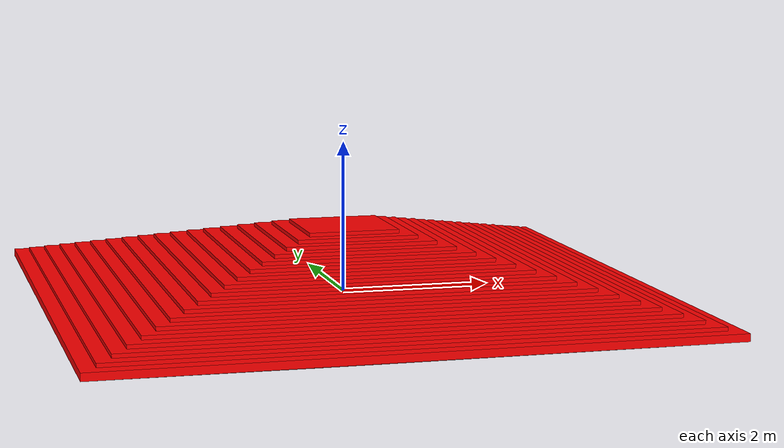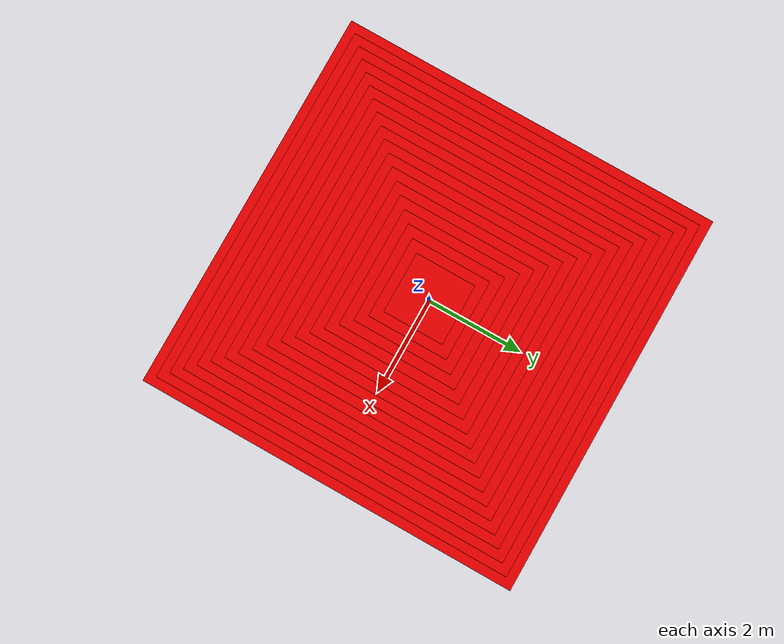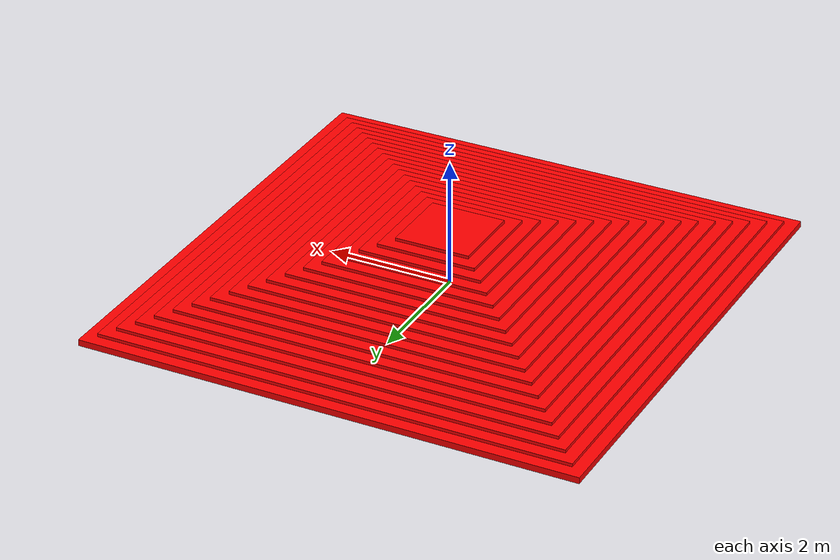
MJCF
<mujoco model="random_box_terrain">
    <compiler angle="degree" coordinate="local"/>
    <option timestep="0.01" gravity="0 0 -9.81" integrator="RK4"/>

    <asset>
        <texture type="2d" name="Plastic006_color"      file="../textures/Plastic006_2K-PNG/Plastic006_2K-PNG_Color.png"/>
        <texture type="2d" name="Plastic006_roughness"  file="../textures/Plastic006_2K-PNG/Plastic006_2K-PNG_Roughness.png"/>
        <texture type="2d" name="Plastic006_normal"     file="../textures/Plastic006_2K-PNG/Plastic006_2K-PNG_NormalDX.png"/>

        <material name="pbr_plastic_black" metallic ="0.05" roughness="1.0" rgba="1 0 0 1.0">
        <rgb        texture="Plastic006_color"/>
        <normal     texture="Plastic006_normal"/>
        <roughness  texture="Plastic006_roughness"/>
        </material>

        <texture type="2d" name="Plastic013A_color"      file="../textures/Plastic013A_2K-PNG/Plastic013A_2K-PNG_Color.png"/>
        <texture type="2d" name="Plastic013A_roughness"  file="../textures/Plastic013A_2K-PNG/Plastic013A_2K-PNG_Roughness.png"/>
        <texture type="2d" name="Plastic013A_normal"     file="../textures/Plastic013A_2K-PNG/Plastic013A_2K-PNG_NormalDX.png"/>

        <material name="pbr_plastic_white" metallic ="0.05" roughness="1.0" rgba="1 0 0 1.0">
        <rgb        texture="Plastic013A_color"/>
        <normal     texture="Plastic013A_normal"/>
        <roughness  texture="Plastic013A_roughness"/>
        </material>

        <texture type="2d" name="Plastic010_color"      file="../textures/Plastic010_2K-PNG/Plastic010_2K-PNG_Color.png"/>
        <texture type="2d" name="Plastic010_roughness"  file="../textures/Plastic010_2K-PNG/Plastic010_2K-PNG_Roughness.png"/>
        <texture type="2d" name="Plastic010_normal"     file="../textures/Plastic010_2K-PNG/Plastic010_2K-PNG_NormalDX.png"/>

        <material name="pbr_plastic_gray" metallic ="0.05" roughness="1.0" rgba="1 0 0 1.0">
        <rgb        texture="Plastic010_color"/>
        <normal     texture="Plastic010_normal"/>
        <roughness  texture="Plastic010_roughness"/>
        </material>
    </asset>
    <worldbody>
        <body name="terrain" pos="0.0 0.0 0.0">
            <geom type="box" pos="0.0 0.0 0.0" size="4.0 4.0 0.05"  material="pbr_plastic_gray"/>
            <geom type="box" pos="0.0 0.0 0.0" size="3.8 3.8 0.1"  material="pbr_plastic_white"/>
            <geom type="box" pos="0.0 0.0 0.0" size="3.6 3.6 0.15"  material="pbr_plastic_gray"/>
            <geom type="box" pos="0.0 0.0 0.0" size="3.4 3.4 0.2"  material="pbr_plastic_white"/>
            <geom type="box" pos="0.0 0.0 0.0" size="3.2 3.2 0.25"  material="pbr_plastic_gray"/>
            <geom type="box" pos="0.0 0.0 0.0" size="3.0 3.0 0.3"  material="pbr_plastic_white"/>
            <geom type="box" pos="0.0 0.0 0.0" size="2.8 2.8 0.35"  material="pbr_plastic_gray"/>
            <geom type="box" pos="0.0 0.0 0.0" size="2.6 2.6 0.4"  material="pbr_plastic_white"/>
            <geom type="box" pos="0.0 0.0 0.0" size="2.4 2.4 0.45"  material="pbr_plastic_gray"/>
            <geom type="box" pos="0.0 0.0 0.0" size="2.2 2.2 0.5"  material="pbr_plastic_white"/>
            <geom type="box" pos="0.0 0.0 0.0" size="2.0 2.0 0.55"  material="pbr_plastic_gray"/>
            <geom type="box" pos="0.0 0.0 0.0" size="1.8 1.8 0.6"  material="pbr_plastic_white"/>
            <geom type="box" pos="0.0 0.0 0.0" size="1.6 1.6 0.65"  material="pbr_plastic_gray"/>
            <geom type="box" pos="0.0 0.0 0.0" size="1.4 1.4 0.7"  material="pbr_plastic_white"/>
            <geom type="box" pos="0.0 0.0 0.0" size="1.2 1.2 0.75"  material="pbr_plastic_gray"/>
            <geom type="box" pos="0.0 0.0 0.0" size="1.0 1.0 0.8"  material="pbr_plastic_white"/>
            <geom type="box" pos="0.0 0.0 0.0" size="0.8 0.8 0.85"  material="pbr_plastic_gray"/>
            <geom type="box" pos="0.0 0.0 0.0" size="0.6 0.6 0.9"  material="pbr_plastic_white"/>
        </body>
    </worldbody>

    <actuator>
        <!-- 在这里你可以定义一些控制器 -->
    </actuator>

</mujoco>
